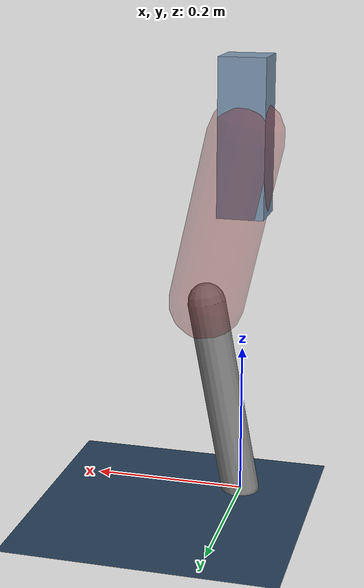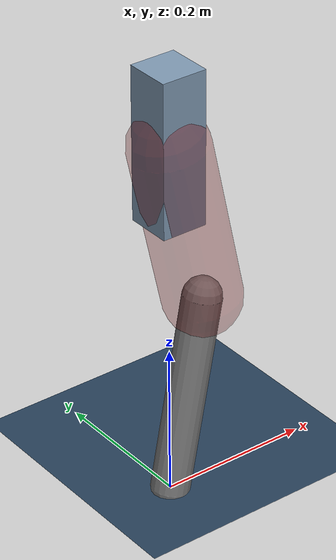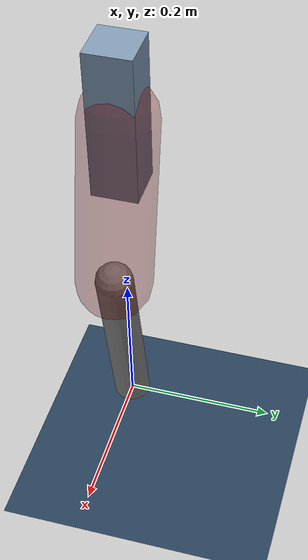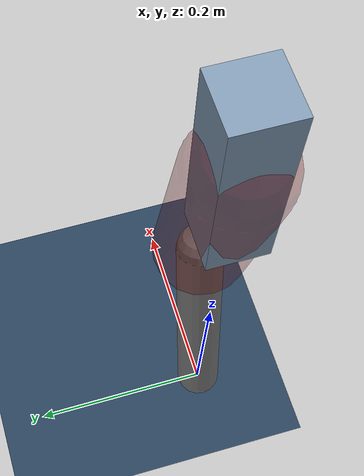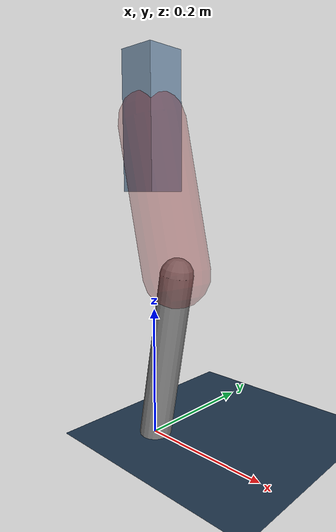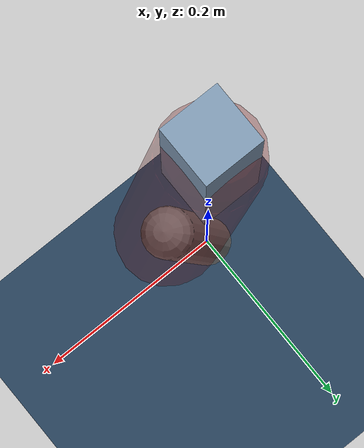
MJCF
<mujoco model="Hopper2D">
	<compiler inertiafromgeom="true" angle="radian" />
	<option timestep="0.001" integrator="implicit" cone="elliptic" solver="Newton" tolerance="1e-10" />

	<default>
		<geom contype="1" conaffinity="1" condim="3" friction="2 0.005 0.0001" solref="0.005 1" />
		<joint limited="true" damping="0.1" />
	</default>

	<asset>
		<texture name="skybox" type="skybox" builtin="gradient" rgb1=".4 .6 .8" rgb2="0 0 0" width="800" height="800" />
		<texture name="grid" type="2d" builtin="checker" rgb1=".1 .2 .3" rgb2=".2 .3 .4" width="300" height="300" mark="edge" markrgb=".2 .3 .4" />
		<material name="ground" texture="grid" texrepeat="1 1" texuniform="true" reflectance="0.1" />
		<material name="leg" rgba="0.5 0.6 0.7 1" />
	</asset>

	<worldbody>

		<geom name="floor" type="plane" size="5 5 0.25" material="ground" />

		<light directional="false" diffuse="0.8 0.8 0.8" specular="0.3 0.3 0.3" pos="0 0 2" dir="0 0 -1" />
		<light mode="targetbodycom" target="base" directional="false" diffuse="0.8 0.8 0.8" specular="0.3 0.3 0.3" pos="0 0 2" dir="0 0 -1" />

		<camera name="fixed" pos="0 -2 1" xyaxes="1 0 0 0 0 1" />
		<camera name="tracking" mode="trackcom" pos="0 -3 1" />

		<body name="root" pos="0 0 0.4793127125404665">
			<joint name="slide_x" type="slide" axis="1 0 0" range="-100 100" />
			<joint name="slide_z" type="slide" axis="0 0 1" range="0 10" />

			<body name="base" pos="0 0 0">
				<geom name="torso" type="box" size="0.03 0.03 0.1" mass="2.126" material="leg" />

				<body name="link1" pos="0 0 0" euler="0 1.3505723571837929 0">
					<joint type="hinge" axis="0 -1 0" pos="0 0 0" name="hinge1" limited="true" range="-3.14 3.14" stiffness="0" damping="0.1" />
					<geom name="thigh" type="capsule" fromto="0 0 0 0.22446723858943785 0 0" size="0.05" rgba="0.5 0 0 0.3" mass="0.7909680964735946" />

					<body name="link2" pos="0.22446723858943785 0 0" euler="0 0.40644202257000156 0">
						<joint type="hinge" axis="0 -1 0" pos="0 0 0" name="hinge2" limited="true" range="-3.14 3.14" stiffness="0" damping="0.1" />
						<geom name="shank" type="capsule" fromto="0 0 0 0.26484547395102864 0 0" size="0.025" mass="0.4547609265559258" />

					</body>
				</body>
			</body>
		</body>
	</worldbody>

	<actuator>
		<motor name="torque1" joint="hinge1" ctrlrange="-109.13959812477728 109.13959812477728" ctrllimited="true" gear="1" />
		<motor name="torque2" joint="hinge2" ctrlrange="-15.394934376836012 15.394934376836012" ctrllimited="true" gear="1" />
	</actuator>
</mujoco>
